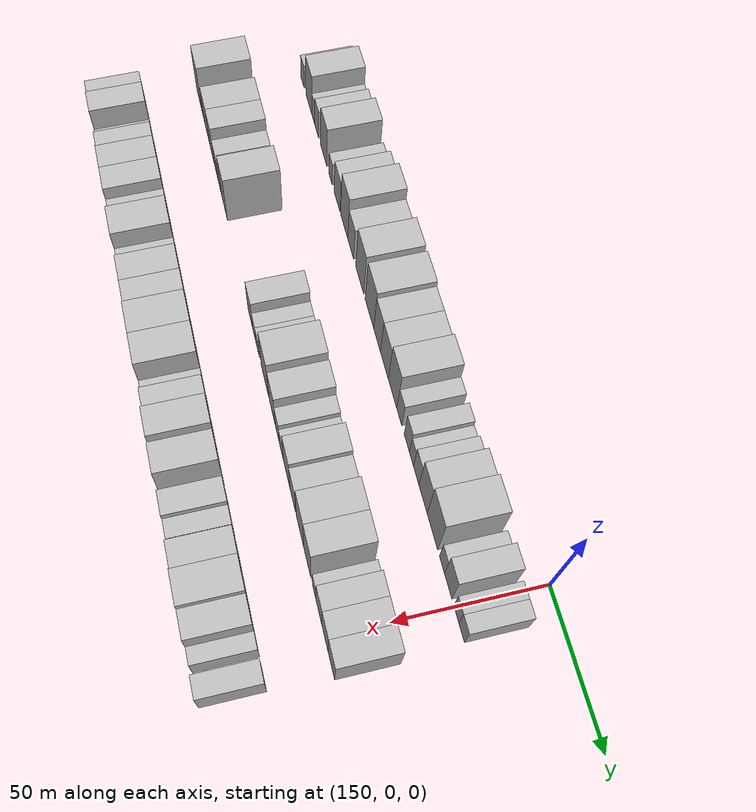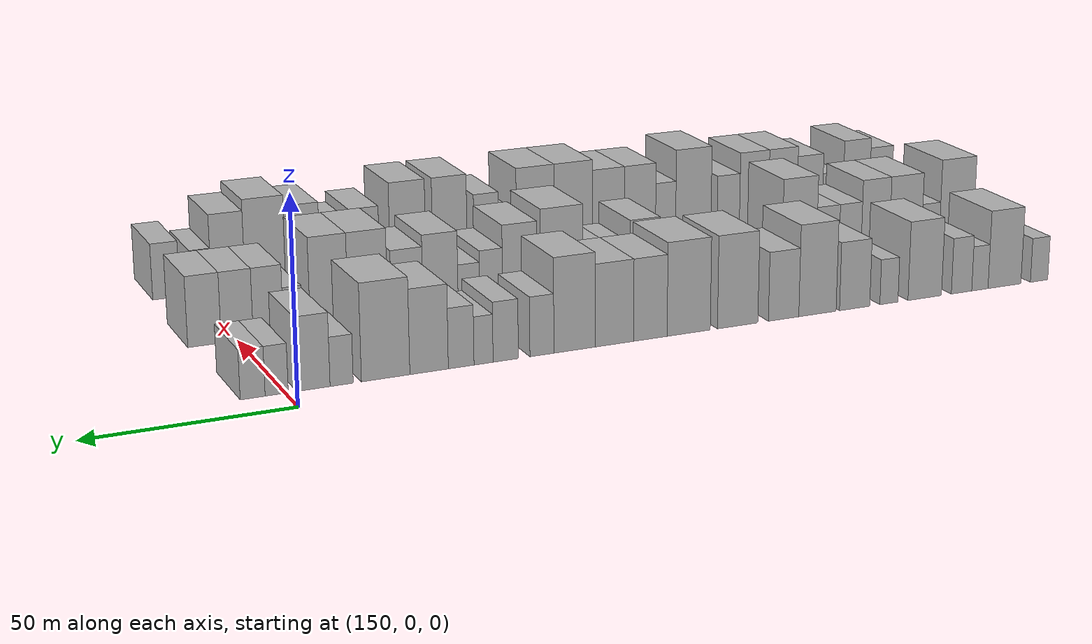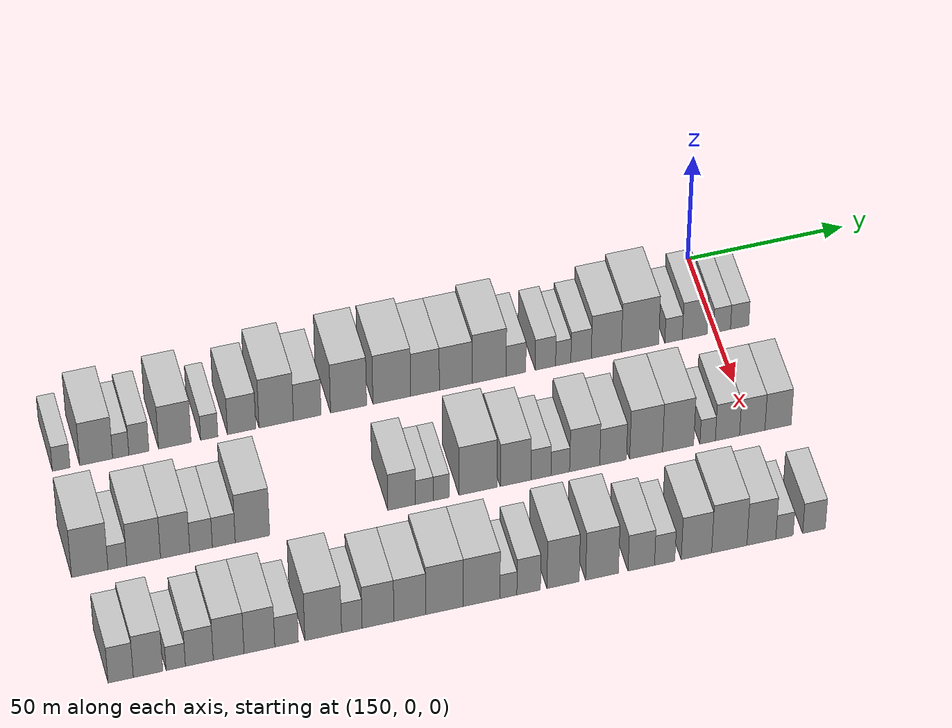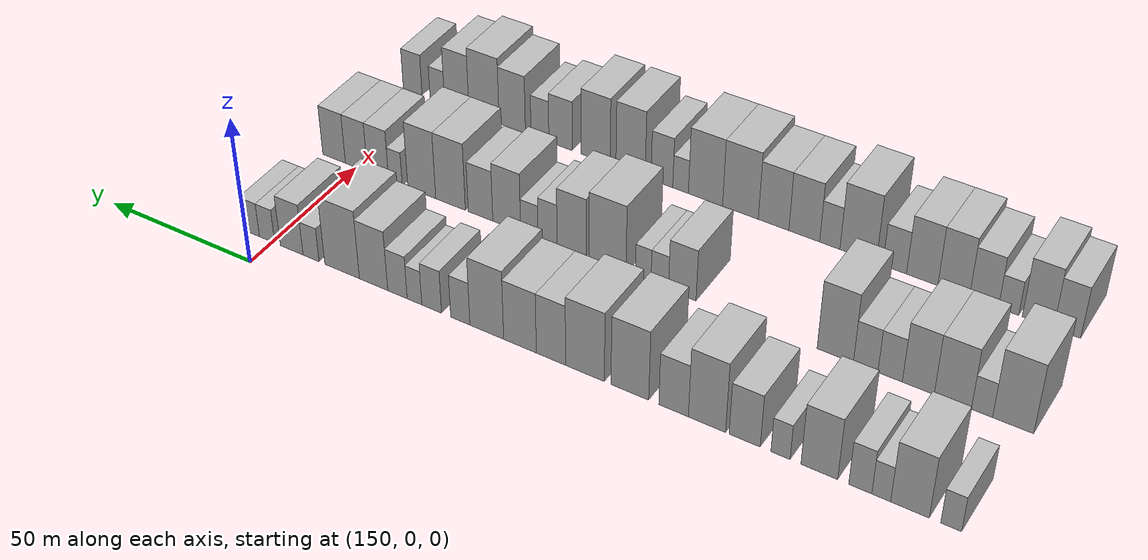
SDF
<sdf version="1.6">
 <world name="default">
  <model name="building_466">
   <static>1</static>
   <pose>170.0000 -206.3429 0 0.000000 0.000000 0.000000</pose>
   <link name="link">
    <pose>0 0 6.00 0 0 0</pose>
    <collision name="collision"><geometry><box><size>20.0000 5.4747 12.0000</size></box></geometry></collision>
    <visual name="visual">
     <cast_shadows>0</cast_shadows>
     <geometry><box><size>20.0000 5.4747 12.0000</size></box></geometry>
     <material>
      <script>
       <uri>model://HANNAS_wall/materials/scripts</uri>
       <uri>model://HANNAS_wall/materials/textures</uri>
       <name>vrc/HANNAS_wall</name>
      </script>
     </material>
    </visual>
   </link>
  </model>
  <model name="building_467">
   <static>1</static>
   <pose>170.0000 -195.4884 0 0.000000 0.000000 0.000000</pose>
   <link name="link">
    <pose>0 0 10.50 0 0 0</pose>
    <collision name="collision"><geometry><box><size>20.0000 10.2343 21.0000</size></box></geometry></collision>
    <visual name="visual">
     <cast_shadows>0</cast_shadows>
     <geometry><box><size>20.0000 10.2343 21.0000</size></box></geometry>
     <material>
      <script>
       <uri>model://HANNAS_wall/materials/scripts</uri>
       <uri>model://HANNAS_wall/materials/textures</uri>
       <name>vrc/HANNAS_wall</name>
      </script>
     </material>
    </visual>
   </link>
  </model>
  <model name="building_468">
   <static>1</static>
   <pose>170.0000 -187.8562 0 0.000000 0.000000 0.000000</pose>
   <link name="link">
    <pose>0 0 6.00 0 0 0</pose>
    <collision name="collision"><geometry><box><size>20.0000 5.0300 12.0000</size></box></geometry></collision>
    <visual name="visual">
     <cast_shadows>0</cast_shadows>
     <geometry><box><size>20.0000 5.0300 12.0000</size></box></geometry>
     <material>
      <script>
       <uri>model://HANNAS_wall/materials/scripts</uri>
       <uri>model://HANNAS_wall/materials/textures</uri>
       <name>vrc/HANNAS_wall</name>
      </script>
     </material>
    </visual>
   </link>
  </model>
  <model name="building_469">
   <static>1</static>
   <pose>170.0000 -182.2184 0 0.000000 0.000000 0.000000</pose>
   <link name="link">
    <pose>0 0 7.50 0 0 0</pose>
    <collision name="collision"><geometry><box><size>20.0000 6.2456 15.0000</size></box></geometry></collision>
    <visual name="visual">
     <cast_shadows>0</cast_shadows>
     <geometry><box><size>20.0000 6.2456 15.0000</size></box></geometry>
     <material>
      <script>
       <uri>model://HANNAS_wall/materials/scripts</uri>
       <uri>model://HANNAS_wall/materials/textures</uri>
       <name>vrc/HANNAS_wall</name>
      </script>
     </material>
    </visual>
   </link>
  </model>
  <model name="building_470">
   <static>1</static>
   <pose>170.0000 -171.0382 0 0.000000 0.000000 0.000000</pose>
   <link name="link">
    <pose>0 0 10.50 0 0 0</pose>
    <collision name="collision"><geometry><box><size>20.0000 10.1148 21.0000</size></box></geometry></collision>
    <visual name="visual">
     <cast_shadows>0</cast_shadows>
     <geometry><box><size>20.0000 10.1148 21.0000</size></box></geometry>
     <material>
      <script>
       <uri>model://HANNAS_wall/materials/scripts</uri>
       <uri>model://HANNAS_wall/materials/textures</uri>
       <name>vrc/HANNAS_wall</name>
      </script>
     </material>
    </visual>
   </link>
  </model>
  <model name="building_471">
   <static>1</static>
   <pose>170.0000 -160.2871 0 0.000000 0.000000 0.000000</pose>
   <link name="link">
    <pose>0 0 6.00 0 0 0</pose>
    <collision name="collision"><geometry><box><size>20.0000 5.3875 12.0000</size></box></geometry></collision>
    <visual name="visual">
     <cast_shadows>0</cast_shadows>
     <geometry><box><size>20.0000 5.3875 12.0000</size></box></geometry>
     <material>
      <script>
       <uri>model://HANNAS_wall/materials/scripts</uri>
       <uri>model://HANNAS_wall/materials/textures</uri>
       <name>vrc/HANNAS_wall</name>
      </script>
     </material>
    </visual>
   </link>
  </model>
  <model name="building_472">
   <static>1</static>
   <pose>170.0000 -150.1588 0 0.000000 0.000000 0.000000</pose>
   <link name="link">
    <pose>0 0 9.00 0 0 0</pose>
    <collision name="collision"><geometry><box><size>20.0000 8.8691 18.0000</size></box></geometry></collision>
    <visual name="visual">
     <cast_shadows>0</cast_shadows>
     <geometry><box><size>20.0000 8.8691 18.0000</size></box></geometry>
     <material>
      <script>
       <uri>model://HANNAS_wall/materials/scripts</uri>
       <uri>model://HANNAS_wall/materials/textures</uri>
       <name>vrc/HANNAS_wall</name>
      </script>
     </material>
    </visual>
   </link>
  </model>
  <model name="building_473">
   <static>1</static>
   <pose>170.0000 -139.3335 0 0.000000 0.000000 0.000000</pose>
   <link name="link">
    <pose>0 0 12.00 0 0 0</pose>
    <collision name="collision"><geometry><box><size>20.0000 10.7816 24.0000</size></box></geometry></collision>
    <visual name="visual">
     <cast_shadows>0</cast_shadows>
     <geometry><box><size>20.0000 10.7816 24.0000</size></box></geometry>
     <material>
      <script>
       <uri>model://HANNAS_wall/materials/scripts</uri>
       <uri>model://HANNAS_wall/materials/textures</uri>
       <name>vrc/HANNAS_wall</name>
      </script>
     </material>
    </visual>
   </link>
  </model>
  <model name="building_474">
   <static>1</static>
   <pose>170.0000 -129.6079 0 0.000000 0.000000 0.000000</pose>
   <link name="link">
    <pose>0 0 9.00 0 0 0</pose>
    <collision name="collision"><geometry><box><size>20.0000 8.6696 18.0000</size></box></geometry></collision>
    <visual name="visual">
     <cast_shadows>0</cast_shadows>
     <geometry><box><size>20.0000 8.6696 18.0000</size></box></geometry>
     <material>
      <script>
       <uri>model://HANNAS_wall/materials/scripts</uri>
       <uri>model://HANNAS_wall/materials/textures</uri>
       <name>vrc/HANNAS_wall</name>
      </script>
     </material>
    </visual>
   </link>
  </model>
  <model name="building_475">
   <static>1</static>
   <pose>170.0000 -116.6112 0 0.000000 0.000000 0.000000</pose>
   <link name="link">
    <pose>0 0 12.00 0 0 0</pose>
    <collision name="collision"><geometry><box><size>20.0000 11.3239 24.0000</size></box></geometry></collision>
    <visual name="visual">
     <cast_shadows>0</cast_shadows>
     <geometry><box><size>20.0000 11.3239 24.0000</size></box></geometry>
     <material>
      <script>
       <uri>model://HANNAS_wall/materials/scripts</uri>
       <uri>model://HANNAS_wall/materials/textures</uri>
       <name>vrc/HANNAS_wall</name>
      </script>
     </material>
    </visual>
   </link>
  </model>
  <model name="building_476">
   <static>1</static>
   <pose>170.0000 -103.0180 0 0.000000 0.000000 0.000000</pose>
   <link name="link">
    <pose>0 0 12.00 0 0 0</pose>
    <collision name="collision"><geometry><box><size>20.0000 11.8623 24.0000</size></box></geometry></collision>
    <visual name="visual">
     <cast_shadows>0</cast_shadows>
     <geometry><box><size>20.0000 11.8623 24.0000</size></box></geometry>
     <material>
      <script>
       <uri>model://HANNAS_wall/materials/scripts</uri>
       <uri>model://HANNAS_wall/materials/textures</uri>
       <name>vrc/HANNAS_wall</name>
      </script>
     </material>
    </visual>
   </link>
  </model>
  <model name="building_477">
   <static>1</static>
   <pose>170.0000 -92.5436 0 0.000000 0.000000 0.000000</pose>
   <link name="link">
    <pose>0 0 10.50 0 0 0</pose>
    <collision name="collision"><geometry><box><size>20.0000 9.0867 21.0000</size></box></geometry></collision>
    <visual name="visual">
     <cast_shadows>0</cast_shadows>
     <geometry><box><size>20.0000 9.0867 21.0000</size></box></geometry>
     <material>
      <script>
       <uri>model://HANNAS_wall/materials/scripts</uri>
       <uri>model://HANNAS_wall/materials/textures</uri>
       <name>vrc/HANNAS_wall</name>
      </script>
     </material>
    </visual>
   </link>
  </model>
  <model name="building_478">
   <static>1</static>
   <pose>170.0000 -82.8429 0 0.000000 0.000000 0.000000</pose>
   <link name="link">
    <pose>0 0 10.50 0 0 0</pose>
    <collision name="collision"><geometry><box><size>20.0000 10.3147 21.0000</size></box></geometry></collision>
    <visual name="visual">
     <cast_shadows>0</cast_shadows>
     <geometry><box><size>20.0000 10.3147 21.0000</size></box></geometry>
     <material>
      <script>
       <uri>model://HANNAS_wall/materials/scripts</uri>
       <uri>model://HANNAS_wall/materials/textures</uri>
       <name>vrc/HANNAS_wall</name>
      </script>
     </material>
    </visual>
   </link>
  </model>
  <model name="building_479">
   <static>1</static>
   <pose>170.0000 -72.2664 0 0.000000 0.000000 0.000000</pose>
   <link name="link">
    <pose>0 0 12.00 0 0 0</pose>
    <collision name="collision"><geometry><box><size>20.0000 10.8383 24.0000</size></box></geometry></collision>
    <visual name="visual">
     <cast_shadows>0</cast_shadows>
     <geometry><box><size>20.0000 10.8383 24.0000</size></box></geometry>
     <material>
      <script>
       <uri>model://HANNAS_wall/materials/scripts</uri>
       <uri>model://HANNAS_wall/materials/textures</uri>
       <name>vrc/HANNAS_wall</name>
      </script>
     </material>
    </visual>
   </link>
  </model>
  <model name="building_480">
   <static>1</static>
   <pose>170.0000 -63.7287 0 0.000000 0.000000 0.000000</pose>
   <link name="link">
    <pose>0 0 7.50 0 0 0</pose>
    <collision name="collision"><geometry><box><size>20.0000 6.2371 15.0000</size></box></geometry></collision>
    <visual name="visual">
     <cast_shadows>0</cast_shadows>
     <geometry><box><size>20.0000 6.2371 15.0000</size></box></geometry>
     <material>
      <script>
       <uri>model://HANNAS_wall/materials/scripts</uri>
       <uri>model://HANNAS_wall/materials/textures</uri>
       <name>vrc/HANNAS_wall</name>
      </script>
     </material>
    </visual>
   </link>
  </model>
  <model name="building_481">
   <static>1</static>
   <pose>170.0000 -54.3670 0 0.000000 0.000000 0.000000</pose>
   <link name="link">
    <pose>0 0 7.50 0 0 0</pose>
    <collision name="collision"><geometry><box><size>20.0000 6.4861 15.0000</size></box></geometry></collision>
    <visual name="visual">
     <cast_shadows>0</cast_shadows>
     <geometry><box><size>20.0000 6.4861 15.0000</size></box></geometry>
     <material>
      <script>
       <uri>model://HANNAS_wall/materials/scripts</uri>
       <uri>model://HANNAS_wall/materials/textures</uri>
       <name>vrc/HANNAS_wall</name>
      </script>
     </material>
    </visual>
   </link>
  </model>
  <model name="building_482">
   <static>1</static>
   <pose>170.0000 -48.6976 0 0.000000 0.000000 0.000000</pose>
   <link name="link">
    <pose>0 0 6.00 0 0 0</pose>
    <collision name="collision"><geometry><box><size>20.0000 4.8527 12.0000</size></box></geometry></collision>
    <visual name="visual">
     <cast_shadows>0</cast_shadows>
     <geometry><box><size>20.0000 4.8527 12.0000</size></box></geometry>
     <material>
      <script>
       <uri>model://HANNAS_wall/materials/scripts</uri>
       <uri>model://HANNAS_wall/materials/textures</uri>
       <name>vrc/HANNAS_wall</name>
      </script>
     </material>
    </visual>
   </link>
  </model>
  <model name="building_483">
   <static>1</static>
   <pose>170.0000 -43.0242 0 0.000000 0.000000 0.000000</pose>
   <link name="link">
    <pose>0 0 7.50 0 0 0</pose>
    <collision name="collision"><geometry><box><size>20.0000 6.4941 15.0000</size></box></geometry></collision>
    <visual name="visual">
     <cast_shadows>0</cast_shadows>
     <geometry><box><size>20.0000 6.4941 15.0000</size></box></geometry>
     <material>
      <script>
       <uri>model://HANNAS_wall/materials/scripts</uri>
       <uri>model://HANNAS_wall/materials/textures</uri>
       <name>vrc/HANNAS_wall</name>
      </script>
     </material>
    </visual>
   </link>
  </model>
  <model name="building_484">
   <static>1</static>
   <pose>170.0000 -34.9774 0 0.000000 0.000000 0.000000</pose>
   <link name="link">
    <pose>0 0 10.50 0 0 0</pose>
    <collision name="collision"><geometry><box><size>20.0000 9.5996 21.0000</size></box></geometry></collision>
    <visual name="visual">
     <cast_shadows>0</cast_shadows>
     <geometry><box><size>20.0000 9.5996 21.0000</size></box></geometry>
     <material>
      <script>
       <uri>model://HANNAS_wall/materials/scripts</uri>
       <uri>model://HANNAS_wall/materials/textures</uri>
       <name>vrc/HANNAS_wall</name>
      </script>
     </material>
    </visual>
   </link>
  </model>
  <model name="building_485">
   <static>1</static>
   <pose>170.0000 -24.2244 0 0.000000 0.000000 0.000000</pose>
   <link name="link">
    <pose>0 0 12.00 0 0 0</pose>
    <collision name="collision"><geometry><box><size>20.0000 11.9065 24.0000</size></box></geometry></collision>
    <visual name="visual">
     <cast_shadows>0</cast_shadows>
     <geometry><box><size>20.0000 11.9065 24.0000</size></box></geometry>
     <material>
      <script>
       <uri>model://HANNAS_wall/materials/scripts</uri>
       <uri>model://HANNAS_wall/materials/textures</uri>
       <name>vrc/HANNAS_wall</name>
      </script>
     </material>
    </visual>
   </link>
  </model>
  <model name="building_486">
   <static>1</static>
   <pose>170.0000 -13.4729 0 0.000000 0.000000 0.000000</pose>
   <link name="link">
    <pose>0 0 6.00 0 0 0</pose>
    <collision name="collision"><geometry><box><size>20.0000 5.5965 12.0000</size></box></geometry></collision>
    <visual name="visual">
     <cast_shadows>0</cast_shadows>
     <geometry><box><size>20.0000 5.5965 12.0000</size></box></geometry>
     <material>
      <script>
       <uri>model://HANNAS_wall/materials/scripts</uri>
       <uri>model://HANNAS_wall/materials/textures</uri>
       <name>vrc/HANNAS_wall</name>
      </script>
     </material>
    </visual>
   </link>
  </model>
  <model name="building_487">
   <static>1</static>
   <pose>170.0000 -6.6761 0 0.000000 0.000000 0.000000</pose>
   <link name="link">
    <pose>0 0 9.00 0 0 0</pose>
    <collision name="collision"><geometry><box><size>20.0000 7.9970 18.0000</size></box></geometry></collision>
    <visual name="visual">
     <cast_shadows>0</cast_shadows>
     <geometry><box><size>20.0000 7.9970 18.0000</size></box></geometry>
     <material>
      <script>
       <uri>model://HANNAS_wall/materials/scripts</uri>
       <uri>model://HANNAS_wall/materials/textures</uri>
       <name>vrc/HANNAS_wall</name>
      </script>
     </material>
    </visual>
   </link>
  </model>
  <model name="building_488">
   <static>1</static>
   <pose>170.0000 2.0554 0 0.000000 0.000000 0.000000</pose>
   <link name="link">
    <pose>0 0 6.00 0 0 0</pose>
    <collision name="collision"><geometry><box><size>20.0000 5.4661 12.0000</size></box></geometry></collision>
    <visual name="visual">
     <cast_shadows>0</cast_shadows>
     <geometry><box><size>20.0000 5.4661 12.0000</size></box></geometry>
     <material>
      <script>
       <uri>model://HANNAS_wall/materials/scripts</uri>
       <uri>model://HANNAS_wall/materials/textures</uri>
       <name>vrc/HANNAS_wall</name>
      </script>
     </material>
    </visual>
   </link>
  </model>
  <model name="building_489">
   <static>1</static>
   <pose>170.0000 7.7135 0 0.000000 0.000000 0.000000</pose>
   <link name="link">
    <pose>0 0 6.00 0 0 0</pose>
    <collision name="collision"><geometry><box><size>20.0000 5.8501 12.0000</size></box></geometry></collision>
    <visual name="visual">
     <cast_shadows>0</cast_shadows>
     <geometry><box><size>20.0000 5.8501 12.0000</size></box></geometry>
     <material>
      <script>
       <uri>model://HANNAS_wall/materials/scripts</uri>
       <uri>model://HANNAS_wall/materials/textures</uri>
       <name>vrc/HANNAS_wall</name>
      </script>
     </material>
    </visual>
   </link>
  </model>
  <model name="building_613">
   <static>1</static>
   <pose>210.0000 -206.3884 0 0.000000 0.000000 0.000000</pose>
   <link name="link">
    <pose>0 0 12.00 0 0 0</pose>
    <collision name="collision"><geometry><box><size>20.0000 11.1576 24.0000</size></box></geometry></collision>
    <visual name="visual">
     <cast_shadows>0</cast_shadows>
     <geometry><box><size>20.0000 11.1576 24.0000</size></box></geometry>
     <material>
      <script>
       <uri>model://HANNAS_wall/materials/scripts</uri>
       <uri>model://HANNAS_wall/materials/textures</uri>
       <name>vrc/HANNAS_wall</name>
      </script>
     </material>
    </visual>
   </link>
  </model>
  <model name="building_614">
   <static>1</static>
   <pose>210.0000 -197.9158 0 0.000000 0.000000 0.000000</pose>
   <link name="link">
    <pose>0 0 6.00 0 0 0</pose>
    <collision name="collision"><geometry><box><size>20.0000 5.7878 12.0000</size></box></geometry></collision>
    <visual name="visual">
     <cast_shadows>0</cast_shadows>
     <geometry><box><size>20.0000 5.7878 12.0000</size></box></geometry>
     <material>
      <script>
       <uri>model://HANNAS_wall/materials/scripts</uri>
       <uri>model://HANNAS_wall/materials/textures</uri>
       <name>vrc/HANNAS_wall</name>
      </script>
     </material>
    </visual>
   </link>
  </model>
  <model name="building_615">
   <static>1</static>
   <pose>210.0000 -189.8598 0 0.000000 0.000000 0.000000</pose>
   <link name="link">
    <pose>0 0 10.50 0 0 0</pose>
    <collision name="collision"><geometry><box><size>20.0000 10.3242 21.0000</size></box></geometry></collision>
    <visual name="visual">
     <cast_shadows>0</cast_shadows>
     <geometry><box><size>20.0000 10.3242 21.0000</size></box></geometry>
     <material>
      <script>
       <uri>model://HANNAS_wall/materials/scripts</uri>
       <uri>model://HANNAS_wall/materials/textures</uri>
       <name>vrc/HANNAS_wall</name>
      </script>
     </material>
    </visual>
   </link>
  </model>
  <model name="building_616">
   <static>1</static>
   <pose>210.0000 -180.2013 0 0.000000 0.000000 0.000000</pose>
   <link name="link">
    <pose>0 0 10.50 0 0 0</pose>
    <collision name="collision"><geometry><box><size>20.0000 8.9926 21.0000</size></box></geometry></collision>
    <visual name="visual">
     <cast_shadows>0</cast_shadows>
     <geometry><box><size>20.0000 8.9926 21.0000</size></box></geometry>
     <material>
      <script>
       <uri>model://HANNAS_wall/materials/scripts</uri>
       <uri>model://HANNAS_wall/materials/textures</uri>
       <name>vrc/HANNAS_wall</name>
      </script>
     </material>
    </visual>
   </link>
  </model>
  <model name="building_617">
   <static>1</static>
   <pose>210.0000 -172.2276 0 0.000000 0.000000 0.000000</pose>
   <link name="link">
    <pose>0 0 7.50 0 0 0</pose>
    <collision name="collision"><geometry><box><size>20.0000 6.9549 15.0000</size></box></geometry></collision>
    <visual name="visual">
     <cast_shadows>0</cast_shadows>
     <geometry><box><size>20.0000 6.9549 15.0000</size></box></geometry>
     <material>
      <script>
       <uri>model://HANNAS_wall/materials/scripts</uri>
       <uri>model://HANNAS_wall/materials/textures</uri>
       <name>vrc/HANNAS_wall</name>
      </script>
     </material>
    </visual>
   </link>
  </model>
  <model name="building_618">
   <static>1</static>
   <pose>210.0000 -165.2156 0 0.000000 0.000000 0.000000</pose>
   <link name="link">
    <pose>0 0 7.50 0 0 0</pose>
    <collision name="collision"><geometry><box><size>20.0000 7.0690 15.0000</size></box></geometry></collision>
    <visual name="visual">
     <cast_shadows>0</cast_shadows>
     <geometry><box><size>20.0000 7.0690 15.0000</size></box></geometry>
     <material>
      <script>
       <uri>model://HANNAS_wall/materials/scripts</uri>
       <uri>model://HANNAS_wall/materials/textures</uri>
       <name>vrc/HANNAS_wall</name>
      </script>
     </material>
    </visual>
   </link>
  </model>
  <model name="building_619">
   <static>1</static>
   <pose>210.0000 -156.3829 0 0.000000 0.000000 0.000000</pose>
   <link name="link">
    <pose>0 0 12.00 0 0 0</pose>
    <collision name="collision"><geometry><box><size>20.0000 10.5964 24.0000</size></box></geometry></collision>
    <visual name="visual">
     <cast_shadows>0</cast_shadows>
     <geometry><box><size>20.0000 10.5964 24.0000</size></box></geometry>
     <material>
      <script>
       <uri>model://HANNAS_wall/materials/scripts</uri>
       <uri>model://HANNAS_wall/materials/textures</uri>
       <name>vrc/HANNAS_wall</name>
      </script>
     </material>
    </visual>
   </link>
  </model>
  <model name="building_620">
   <static>1</static>
   <pose>210.0000 -110.1337 0 0.000000 0.000000 0.000000</pose>
   <link name="link">
    <pose>0 0 9.00 0 0 0</pose>
    <collision name="collision"><geometry><box><size>20.0000 8.6340 18.0000</size></box></geometry></collision>
    <visual name="visual">
     <cast_shadows>0</cast_shadows>
     <geometry><box><size>20.0000 8.6340 18.0000</size></box></geometry>
     <material>
      <script>
       <uri>model://HANNAS_wall/materials/scripts</uri>
       <uri>model://HANNAS_wall/materials/textures</uri>
       <name>vrc/HANNAS_wall</name>
      </script>
     </material>
    </visual>
   </link>
  </model>
  <model name="building_621">
   <static>1</static>
   <pose>210.0000 -103.0585 0 0.000000 0.000000 0.000000</pose>
   <link name="link">
    <pose>0 0 6.00 0 0 0</pose>
    <collision name="collision"><geometry><box><size>20.0000 5.5162 12.0000</size></box></geometry></collision>
    <visual name="visual">
     <cast_shadows>0</cast_shadows>
     <geometry><box><size>20.0000 5.5162 12.0000</size></box></geometry>
     <material>
      <script>
       <uri>model://HANNAS_wall/materials/scripts</uri>
       <uri>model://HANNAS_wall/materials/textures</uri>
       <name>vrc/HANNAS_wall</name>
      </script>
     </material>
    </visual>
   </link>
  </model>
  <model name="building_622">
   <static>1</static>
   <pose>210.0000 -97.7946 0 0.000000 0.000000 0.000000</pose>
   <link name="link">
    <pose>0 0 6.00 0 0 0</pose>
    <collision name="collision"><geometry><box><size>20.0000 5.0116 12.0000</size></box></geometry></collision>
    <visual name="visual">
     <cast_shadows>0</cast_shadows>
     <geometry><box><size>20.0000 5.0116 12.0000</size></box></geometry>
     <material>
      <script>
       <uri>model://HANNAS_wall/materials/scripts</uri>
       <uri>model://HANNAS_wall/materials/textures</uri>
       <name>vrc/HANNAS_wall</name>
      </script>
     </material>
    </visual>
   </link>
  </model>
  <model name="building_623">
   <static>1</static>
   <pose>210.0000 -86.3336 0 0.000000 0.000000 0.000000</pose>
   <link name="link">
    <pose>0 0 12.00 0 0 0</pose>
    <collision name="collision"><geometry><box><size>20.0000 11.9104 24.0000</size></box></geometry></collision>
    <visual name="visual">
     <cast_shadows>0</cast_shadows>
     <geometry><box><size>20.0000 11.9104 24.0000</size></box></geometry>
     <material>
      <script>
       <uri>model://HANNAS_wall/materials/scripts</uri>
       <uri>model://HANNAS_wall/materials/textures</uri>
       <name>vrc/HANNAS_wall</name>
      </script>
     </material>
    </visual>
   </link>
  </model>
  <model name="building_624">
   <static>1</static>
   <pose>210.0000 -74.5983 0 0.000000 0.000000 0.000000</pose>
   <link name="link">
    <pose>0 0 10.50 0 0 0</pose>
    <collision name="collision"><geometry><box><size>20.0000 9.5602 21.0000</size></box></geometry></collision>
    <visual name="visual">
     <cast_shadows>0</cast_shadows>
     <geometry><box><size>20.0000 9.5602 21.0000</size></box></geometry>
     <material>
      <script>
       <uri>model://HANNAS_wall/materials/scripts</uri>
       <uri>model://HANNAS_wall/materials/textures</uri>
       <name>vrc/HANNAS_wall</name>
      </script>
     </material>
    </visual>
   </link>
  </model>
  <model name="building_625">
   <static>1</static>
   <pose>210.0000 -66.6676 0 0.000000 0.000000 0.000000</pose>
   <link name="link">
    <pose>0 0 7.50 0 0 0</pose>
    <collision name="collision"><geometry><box><size>20.0000 6.3012 15.0000</size></box></geometry></collision>
    <visual name="visual">
     <cast_shadows>0</cast_shadows>
     <geometry><box><size>20.0000 6.3012 15.0000</size></box></geometry>
     <material>
      <script>
       <uri>model://HANNAS_wall/materials/scripts</uri>
       <uri>model://HANNAS_wall/materials/textures</uri>
       <name>vrc/HANNAS_wall</name>
      </script>
     </material>
    </visual>
   </link>
  </model>
  <model name="building_626">
   <static>1</static>
   <pose>210.0000 -60.5862 0 0.000000 0.000000 0.000000</pose>
   <link name="link">
    <pose>0 0 6.00 0 0 0</pose>
    <collision name="collision"><geometry><box><size>20.0000 5.8616 12.0000</size></box></geometry></collision>
    <visual name="visual">
     <cast_shadows>0</cast_shadows>
     <geometry><box><size>20.0000 5.8616 12.0000</size></box></geometry>
     <material>
      <script>
       <uri>model://HANNAS_wall/materials/scripts</uri>
       <uri>model://HANNAS_wall/materials/textures</uri>
       <name>vrc/HANNAS_wall</name>
      </script>
     </material>
    </visual>
   </link>
  </model>
  <model name="building_627">
   <static>1</static>
   <pose>210.0000 -52.9222 0 0.000000 0.000000 0.000000</pose>
   <link name="link">
    <pose>0 0 10.50 0 0 0</pose>
    <collision name="collision"><geometry><box><size>20.0000 9.4664 21.0000</size></box></geometry></collision>
    <visual name="visual">
     <cast_shadows>0</cast_shadows>
     <geometry><box><size>20.0000 9.4664 21.0000</size></box></geometry>
     <material>
      <script>
       <uri>model://HANNAS_wall/materials/scripts</uri>
       <uri>model://HANNAS_wall/materials/textures</uri>
       <name>vrc/HANNAS_wall</name>
      </script>
     </material>
    </visual>
   </link>
  </model>
  <model name="building_628">
   <static>1</static>
   <pose>210.0000 -43.9848 0 0.000000 0.000000 0.000000</pose>
   <link name="link">
    <pose>0 0 9.00 0 0 0</pose>
    <collision name="collision"><geometry><box><size>20.0000 8.4084 18.0000</size></box></geometry></collision>
    <visual name="visual">
     <cast_shadows>0</cast_shadows>
     <geometry><box><size>20.0000 8.4084 18.0000</size></box></geometry>
     <material>
      <script>
       <uri>model://HANNAS_wall/materials/scripts</uri>
       <uri>model://HANNAS_wall/materials/textures</uri>
       <name>vrc/HANNAS_wall</name>
      </script>
     </material>
    </visual>
   </link>
  </model>
  <model name="building_629">
   <static>1</static>
   <pose>210.0000 -33.6000 0 0.000000 0.000000 0.000000</pose>
   <link name="link">
    <pose>0 0 12.00 0 0 0</pose>
    <collision name="collision"><geometry><box><size>20.0000 10.3612 24.0000</size></box></geometry></collision>
    <visual name="visual">
     <cast_shadows>0</cast_shadows>
     <geometry><box><size>20.0000 10.3612 24.0000</size></box></geometry>
     <material>
      <script>
       <uri>model://HANNAS_wall/materials/scripts</uri>
       <uri>model://HANNAS_wall/materials/textures</uri>
       <name>vrc/HANNAS_wall</name>
      </script>
     </material>
    </visual>
   </link>
  </model>
  <model name="building_630">
   <static>1</static>
   <pose>210.0000 -23.5041 0 0.000000 0.000000 0.000000</pose>
   <link name="link">
    <pose>0 0 12.00 0 0 0</pose>
    <collision name="collision"><geometry><box><size>20.0000 9.8306 24.0000</size></box></geometry></collision>
    <visual name="visual">
     <cast_shadows>0</cast_shadows>
     <geometry><box><size>20.0000 9.8306 24.0000</size></box></geometry>
     <material>
      <script>
       <uri>model://HANNAS_wall/materials/scripts</uri>
       <uri>model://HANNAS_wall/materials/textures</uri>
       <name>vrc/HANNAS_wall</name>
      </script>
     </material>
    </visual>
   </link>
  </model>
  <model name="building_631">
   <static>1</static>
   <pose>210.0000 -14.1484 0 0.000000 0.000000 0.000000</pose>
   <link name="link">
    <pose>0 0 6.00 0 0 0</pose>
    <collision name="collision"><geometry><box><size>20.0000 4.8808 12.0000</size></box></geometry></collision>
    <visual name="visual">
     <cast_shadows>0</cast_shadows>
     <geometry><box><size>20.0000 4.8808 12.0000</size></box></geometry>
     <material>
      <script>
       <uri>model://HANNAS_wall/materials/scripts</uri>
       <uri>model://HANNAS_wall/materials/textures</uri>
       <name>vrc/HANNAS_wall</name>
      </script>
     </material>
    </visual>
   </link>
  </model>
  <model name="building_632">
   <static>1</static>
   <pose>210.0000 -7.8735 0 0.000000 0.000000 0.000000</pose>
   <link name="link">
    <pose>0 0 9.00 0 0 0</pose>
    <collision name="collision"><geometry><box><size>20.0000 7.6689 18.0000</size></box></geometry></collision>
    <visual name="visual">
     <cast_shadows>0</cast_shadows>
     <geometry><box><size>20.0000 7.6689 18.0000</size></box></geometry>
     <material>
      <script>
       <uri>model://HANNAS_wall/materials/scripts</uri>
       <uri>model://HANNAS_wall/materials/textures</uri>
       <name>vrc/HANNAS_wall</name>
      </script>
     </material>
    </visual>
   </link>
  </model>
  <model name="building_633">
   <static>1</static>
   <pose>210.0000 -0.0198 0 0.000000 0.000000 0.000000</pose>
   <link name="link">
    <pose>0 0 9.00 0 0 0</pose>
    <collision name="collision"><geometry><box><size>20.0000 8.0384 18.0000</size></box></geometry></collision>
    <visual name="visual">
     <cast_shadows>0</cast_shadows>
     <geometry><box><size>20.0000 8.0384 18.0000</size></box></geometry>
     <material>
      <script>
       <uri>model://HANNAS_wall/materials/scripts</uri>
       <uri>model://HANNAS_wall/materials/textures</uri>
       <name>vrc/HANNAS_wall</name>
      </script>
     </material>
    </visual>
   </link>
  </model>
  <model name="building_634">
   <static>1</static>
   <pose>210.0000 8.1590 0 0.000000 0.000000 0.000000</pose>
   <link name="link">
    <pose>0 0 9.00 0 0 0</pose>
    <collision name="collision"><geometry><box><size>20.0000 8.3193 18.0000</size></box></geometry></collision>
    <visual name="visual">
     <cast_shadows>0</cast_shadows>
     <geometry><box><size>20.0000 8.3193 18.0000</size></box></geometry>
     <material>
      <script>
       <uri>model://HANNAS_wall/materials/scripts</uri>
       <uri>model://HANNAS_wall/materials/textures</uri>
       <name>vrc/HANNAS_wall</name>
      </script>
     </material>
    </visual>
   </link>
  </model>
  <model name="building_752">
   <static>1</static>
   <pose>250.0000 -205.9736 0 0.000000 0.000000 0.000000</pose>
   <link name="link">
    <pose>0 0 9.00 0 0 0</pose>
    <collision name="collision"><geometry><box><size>20.0000 7.6200 18.0000</size></box></geometry></collision>
    <visual name="visual">
     <cast_shadows>0</cast_shadows>
     <geometry><box><size>20.0000 7.6200 18.0000</size></box></geometry>
     <material>
      <script>
       <uri>model://HANNAS_wall/materials/scripts</uri>
       <uri>model://HANNAS_wall/materials/textures</uri>
       <name>vrc/HANNAS_wall</name>
      </script>
     </material>
    </visual>
   </link>
  </model>
  <model name="building_753">
   <static>1</static>
   <pose>250.0000 -197.6965 0 0.000000 0.000000 0.000000</pose>
   <link name="link">
    <pose>0 0 10.50 0 0 0</pose>
    <collision name="collision"><geometry><box><size>20.0000 8.9343 21.0000</size></box></geometry></collision>
    <visual name="visual">
     <cast_shadows>0</cast_shadows>
     <geometry><box><size>20.0000 8.9343 21.0000</size></box></geometry>
     <material>
      <script>
       <uri>model://HANNAS_wall/materials/scripts</uri>
       <uri>model://HANNAS_wall/materials/textures</uri>
       <name>vrc/HANNAS_wall</name>
      </script>
     </material>
    </visual>
   </link>
  </model>
  <model name="building_754">
   <static>1</static>
   <pose>250.0000 -189.3024 0 0.000000 0.000000 0.000000</pose>
   <link name="link">
    <pose>0 0 6.00 0 0 0</pose>
    <collision name="collision"><geometry><box><size>20.0000 5.8539 12.0000</size></box></geometry></collision>
    <visual name="visual">
     <cast_shadows>0</cast_shadows>
     <geometry><box><size>20.0000 5.8539 12.0000</size></box></geometry>
     <material>
      <script>
       <uri>model://HANNAS_wall/materials/scripts</uri>
       <uri>model://HANNAS_wall/materials/textures</uri>
       <name>vrc/HANNAS_wall</name>
      </script>
     </material>
    </visual>
   </link>
  </model>
  <model name="building_755">
   <static>1</static>
   <pose>250.0000 -182.1450 0 0.000000 0.000000 0.000000</pose>
   <link name="link">
    <pose>0 0 9.00 0 0 0</pose>
    <collision name="collision"><geometry><box><size>20.0000 8.4609 18.0000</size></box></geometry></collision>
    <visual name="visual">
     <cast_shadows>0</cast_shadows>
     <geometry><box><size>20.0000 8.4609 18.0000</size></box></geometry>
     <material>
      <script>
       <uri>model://HANNAS_wall/materials/scripts</uri>
       <uri>model://HANNAS_wall/materials/textures</uri>
       <name>vrc/HANNAS_wall</name>
      </script>
     </material>
    </visual>
   </link>
  </model>
  <model name="building_756">
   <static>1</static>
   <pose>250.0000 -173.2368 0 0.000000 0.000000 0.000000</pose>
   <link name="link">
    <pose>0 0 10.50 0 0 0</pose>
    <collision name="collision"><geometry><box><size>20.0000 9.3556 21.0000</size></box></geometry></collision>
    <visual name="visual">
     <cast_shadows>0</cast_shadows>
     <geometry><box><size>20.0000 9.3556 21.0000</size></box></geometry>
     <material>
      <script>
       <uri>model://HANNAS_wall/materials/scripts</uri>
       <uri>model://HANNAS_wall/materials/textures</uri>
       <name>vrc/HANNAS_wall</name>
      </script>
     </material>
    </visual>
   </link>
  </model>
  <model name="building_757">
   <static>1</static>
   <pose>250.0000 -163.8697 0 0.000000 0.000000 0.000000</pose>
   <link name="link">
    <pose>0 0 10.50 0 0 0</pose>
    <collision name="collision"><geometry><box><size>20.0000 9.3787 21.0000</size></box></geometry></collision>
    <visual name="visual">
     <cast_shadows>0</cast_shadows>
     <geometry><box><size>20.0000 9.3787 21.0000</size></box></geometry>
     <material>
      <script>
       <uri>model://HANNAS_wall/materials/scripts</uri>
       <uri>model://HANNAS_wall/materials/textures</uri>
       <name>vrc/HANNAS_wall</name>
      </script>
     </material>
    </visual>
   </link>
  </model>
  <model name="building_758">
   <static>1</static>
   <pose>250.0000 -155.5973 0 0.000000 0.000000 0.000000</pose>
   <link name="link">
    <pose>0 0 7.50 0 0 0</pose>
    <collision name="collision"><geometry><box><size>20.0000 7.1660 15.0000</size></box></geometry></collision>
    <visual name="visual">
     <cast_shadows>0</cast_shadows>
     <geometry><box><size>20.0000 7.1660 15.0000</size></box></geometry>
     <material>
      <script>
       <uri>model://HANNAS_wall/materials/scripts</uri>
       <uri>model://HANNAS_wall/materials/textures</uri>
       <name>vrc/HANNAS_wall</name>
      </script>
     </material>
    </visual>
   </link>
  </model>
  <model name="building_759">
   <static>1</static>
   <pose>250.0000 -144.4138 0 0.000000 0.000000 0.000000</pose>
   <link name="link">
    <pose>0 0 12.00 0 0 0</pose>
    <collision name="collision"><geometry><box><size>20.0000 11.2011 24.0000</size></box></geometry></collision>
    <visual name="visual">
     <cast_shadows>0</cast_shadows>
     <geometry><box><size>20.0000 11.2011 24.0000</size></box></geometry>
     <material>
      <script>
       <uri>model://HANNAS_wall/materials/scripts</uri>
       <uri>model://HANNAS_wall/materials/textures</uri>
       <name>vrc/HANNAS_wall</name>
      </script>
     </material>
    </visual>
   </link>
  </model>
  <model name="building_760">
   <static>1</static>
   <pose>250.0000 -135.6614 0 0.000000 0.000000 0.000000</pose>
   <link name="link">
    <pose>0 0 7.50 0 0 0</pose>
    <collision name="collision"><geometry><box><size>20.0000 6.3036 15.0000</size></box></geometry></collision>
    <visual name="visual">
     <cast_shadows>0</cast_shadows>
     <geometry><box><size>20.0000 6.3036 15.0000</size></box></geometry>
     <material>
      <script>
       <uri>model://HANNAS_wall/materials/scripts</uri>
       <uri>model://HANNAS_wall/materials/textures</uri>
       <name>vrc/HANNAS_wall</name>
      </script>
     </material>
    </visual>
   </link>
  </model>
  <model name="building_761">
   <static>1</static>
   <pose>250.0000 -127.6497 0 0.000000 0.000000 0.000000</pose>
   <link name="link">
    <pose>0 0 10.50 0 0 0</pose>
    <collision name="collision"><geometry><box><size>20.0000 9.7198 21.0000</size></box></geometry></collision>
    <visual name="visual">
     <cast_shadows>0</cast_shadows>
     <geometry><box><size>20.0000 9.7198 21.0000</size></box></geometry>
     <material>
      <script>
       <uri>model://HANNAS_wall/materials/scripts</uri>
       <uri>model://HANNAS_wall/materials/textures</uri>
       <name>vrc/HANNAS_wall</name>
      </script>
     </material>
    </visual>
   </link>
  </model>
  <model name="building_762">
   <static>1</static>
   <pose>250.0000 -117.9113 0 0.000000 0.000000 0.000000</pose>
   <link name="link">
    <pose>0 0 10.50 0 0 0</pose>
    <collision name="collision"><geometry><box><size>20.0000 9.7571 21.0000</size></box></geometry></collision>
    <visual name="visual">
     <cast_shadows>0</cast_shadows>
     <geometry><box><size>20.0000 9.7571 21.0000</size></box></geometry>
     <material>
      <script>
       <uri>model://HANNAS_wall/materials/scripts</uri>
       <uri>model://HANNAS_wall/materials/textures</uri>
       <name>vrc/HANNAS_wall</name>
      </script>
     </material>
    </visual>
   </link>
  </model>
  <model name="building_763">
   <static>1</static>
   <pose>250.0000 -107.2291 0 0.000000 0.000000 0.000000</pose>
   <link name="link">
    <pose>0 0 12.00 0 0 0</pose>
    <collision name="collision"><geometry><box><size>20.0000 11.6074 24.0000</size></box></geometry></collision>
    <visual name="visual">
     <cast_shadows>0</cast_shadows>
     <geometry><box><size>20.0000 11.6074 24.0000</size></box></geometry>
     <material>
      <script>
       <uri>model://HANNAS_wall/materials/scripts</uri>
       <uri>model://HANNAS_wall/materials/textures</uri>
       <name>vrc/HANNAS_wall</name>
      </script>
     </material>
    </visual>
   </link>
  </model>
  <model name="building_764">
   <static>1</static>
   <pose>250.0000 -95.7969 0 0.000000 0.000000 0.000000</pose>
   <link name="link">
    <pose>0 0 12.00 0 0 0</pose>
    <collision name="collision"><geometry><box><size>20.0000 11.2571 24.0000</size></box></geometry></collision>
    <visual name="visual">
     <cast_shadows>0</cast_shadows>
     <geometry><box><size>20.0000 11.2571 24.0000</size></box></geometry>
     <material>
      <script>
       <uri>model://HANNAS_wall/materials/scripts</uri>
       <uri>model://HANNAS_wall/materials/textures</uri>
       <name>vrc/HANNAS_wall</name>
      </script>
     </material>
    </visual>
   </link>
  </model>
  <model name="building_765">
   <static>1</static>
   <pose>250.0000 -87.5582 0 0.000000 0.000000 0.000000</pose>
   <link name="link">
    <pose>0 0 6.00 0 0 0</pose>
    <collision name="collision"><geometry><box><size>20.0000 5.2202 12.0000</size></box></geometry></collision>
    <visual name="visual">
     <cast_shadows>0</cast_shadows>
     <geometry><box><size>20.0000 5.2202 12.0000</size></box></geometry>
     <material>
      <script>
       <uri>model://HANNAS_wall/materials/scripts</uri>
       <uri>model://HANNAS_wall/materials/textures</uri>
       <name>vrc/HANNAS_wall</name>
      </script>
     </material>
    </visual>
   </link>
  </model>
  <model name="building_766">
   <static>1</static>
   <pose>250.0000 -81.3086 0 0.000000 0.000000 0.000000</pose>
   <link name="link">
    <pose>0 0 9.00 0 0 0</pose>
    <collision name="collision"><geometry><box><size>20.0000 7.2791 18.0000</size></box></geometry></collision>
    <visual name="visual">
     <cast_shadows>0</cast_shadows>
     <geometry><box><size>20.0000 7.2791 18.0000</size></box></geometry>
     <material>
      <script>
       <uri>model://HANNAS_wall/materials/scripts</uri>
       <uri>model://HANNAS_wall/materials/textures</uri>
       <name>vrc/HANNAS_wall</name>
      </script>
     </material>
    </visual>
   </link>
  </model>
  <model name="building_767">
   <static>1</static>
   <pose>250.0000 -70.6826 0 0.000000 0.000000 0.000000</pose>
   <link name="link">
    <pose>0 0 12.00 0 0 0</pose>
    <collision name="collision"><geometry><box><size>20.0000 9.9728 24.0000</size></box></geometry></collision>
    <visual name="visual">
     <cast_shadows>0</cast_shadows>
     <geometry><box><size>20.0000 9.9728 24.0000</size></box></geometry>
     <material>
      <script>
       <uri>model://HANNAS_wall/materials/scripts</uri>
       <uri>model://HANNAS_wall/materials/textures</uri>
       <name>vrc/HANNAS_wall</name>
      </script>
     </material>
    </visual>
   </link>
  </model>
  <model name="building_768">
   <static>1</static>
   <pose>250.0000 -58.6125 0 0.000000 0.000000 0.000000</pose>
   <link name="link">
    <pose>0 0 12.00 0 0 0</pose>
    <collision name="collision"><geometry><box><size>20.0000 10.1675 24.0000</size></box></geometry></collision>
    <visual name="visual">
     <cast_shadows>0</cast_shadows>
     <geometry><box><size>20.0000 10.1675 24.0000</size></box></geometry>
     <material>
      <script>
       <uri>model://HANNAS_wall/materials/scripts</uri>
       <uri>model://HANNAS_wall/materials/textures</uri>
       <name>vrc/HANNAS_wall</name>
      </script>
     </material>
    </visual>
   </link>
  </model>
  <model name="building_769">
   <static>1</static>
   <pose>250.0000 -46.4121 0 0.000000 0.000000 0.000000</pose>
   <link name="link">
    <pose>0 0 9.00 0 0 0</pose>
    <collision name="collision"><geometry><box><size>20.0000 8.2333 18.0000</size></box></geometry></collision>
    <visual name="visual">
     <cast_shadows>0</cast_shadows>
     <geometry><box><size>20.0000 8.2333 18.0000</size></box></geometry>
     <material>
      <script>
       <uri>model://HANNAS_wall/materials/scripts</uri>
       <uri>model://HANNAS_wall/materials/textures</uri>
       <name>vrc/HANNAS_wall</name>
      </script>
     </material>
    </visual>
   </link>
  </model>
  <model name="building_770">
   <static>1</static>
   <pose>250.0000 -39.1382 0 0.000000 0.000000 0.000000</pose>
   <link name="link">
    <pose>0 0 7.50 0 0 0</pose>
    <collision name="collision"><geometry><box><size>20.0000 6.3147 15.0000</size></box></geometry></collision>
    <visual name="visual">
     <cast_shadows>0</cast_shadows>
     <geometry><box><size>20.0000 6.3147 15.0000</size></box></geometry>
     <material>
      <script>
       <uri>model://HANNAS_wall/materials/scripts</uri>
       <uri>model://HANNAS_wall/materials/textures</uri>
       <name>vrc/HANNAS_wall</name>
      </script>
     </material>
    </visual>
   </link>
  </model>
  <model name="building_771">
   <static>1</static>
   <pose>250.0000 -29.2352 0 0.000000 0.000000 0.000000</pose>
   <link name="link">
    <pose>0 0 10.50 0 0 0</pose>
    <collision name="collision"><geometry><box><size>20.0000 9.4912 21.0000</size></box></geometry></collision>
    <visual name="visual">
     <cast_shadows>0</cast_shadows>
     <geometry><box><size>20.0000 9.4912 21.0000</size></box></geometry>
     <material>
      <script>
       <uri>model://HANNAS_wall/materials/scripts</uri>
       <uri>model://HANNAS_wall/materials/textures</uri>
       <name>vrc/HANNAS_wall</name>
      </script>
     </material>
    </visual>
   </link>
  </model>
  <model name="building_772">
   <static>1</static>
   <pose>250.0000 -18.9783 0 0.000000 0.000000 0.000000</pose>
   <link name="link">
    <pose>0 0 12.00 0 0 0</pose>
    <collision name="collision"><geometry><box><size>20.0000 11.0226 24.0000</size></box></geometry></collision>
    <visual name="visual">
     <cast_shadows>0</cast_shadows>
     <geometry><box><size>20.0000 11.0226 24.0000</size></box></geometry>
     <material>
      <script>
       <uri>model://HANNAS_wall/materials/scripts</uri>
       <uri>model://HANNAS_wall/materials/textures</uri>
       <name>vrc/HANNAS_wall</name>
      </script>
     </material>
    </visual>
   </link>
  </model>
  <model name="building_773">
   <static>1</static>
   <pose>250.0000 -8.9559 0 0.000000 0.000000 0.000000</pose>
   <link name="link">
    <pose>0 0 10.50 0 0 0</pose>
    <collision name="collision"><geometry><box><size>20.0000 9.0223 21.0000</size></box></geometry></collision>
    <visual name="visual">
     <cast_shadows>0</cast_shadows>
     <geometry><box><size>20.0000 9.0223 21.0000</size></box></geometry>
     <material>
      <script>
       <uri>model://HANNAS_wall/materials/scripts</uri>
       <uri>model://HANNAS_wall/materials/textures</uri>
       <name>vrc/HANNAS_wall</name>
      </script>
     </material>
    </visual>
   </link>
  </model>
  <model name="building_774">
   <static>1</static>
   <pose>250.0000 -1.7334 0 0.000000 0.000000 0.000000</pose>
   <link name="link">
    <pose>0 0 6.00 0 0 0</pose>
    <collision name="collision"><geometry><box><size>20.0000 5.4228 12.0000</size></box></geometry></collision>
    <visual name="visual">
     <cast_shadows>0</cast_shadows>
     <geometry><box><size>20.0000 5.4228 12.0000</size></box></geometry>
     <material>
      <script>
       <uri>model://HANNAS_wall/materials/scripts</uri>
       <uri>model://HANNAS_wall/materials/textures</uri>
       <name>vrc/HANNAS_wall</name>
      </script>
     </material>
    </visual>
   </link>
  </model>
  <model name="building_775">
   <static>1</static>
   <pose>250.0000 7.5194 0 0.000000 0.000000 0.000000</pose>
   <link name="link">
    <pose>0 0 7.50 0 0 0</pose>
    <collision name="collision"><geometry><box><size>20.0000 7.0828 15.0000</size></box></geometry></collision>
    <visual name="visual">
     <cast_shadows>0</cast_shadows>
     <geometry><box><size>20.0000 7.0828 15.0000</size></box></geometry>
     <material>
      <script>
       <uri>model://HANNAS_wall/materials/scripts</uri>
       <uri>model://HANNAS_wall/materials/textures</uri>
       <name>vrc/HANNAS_wall</name>
      </script>
     </material>
    </visual>
   </link>
  </model>
 </world>
</sdf>
